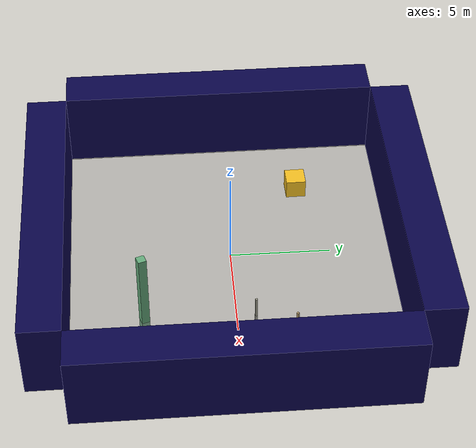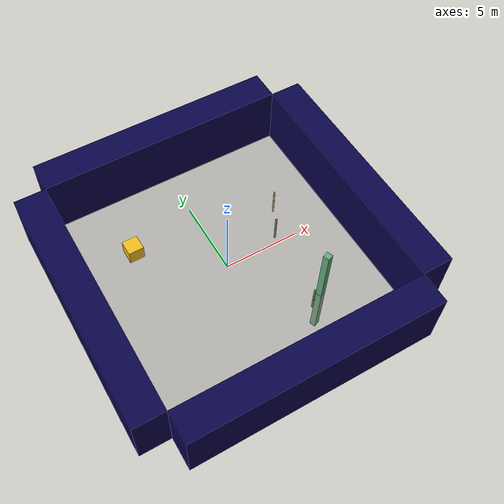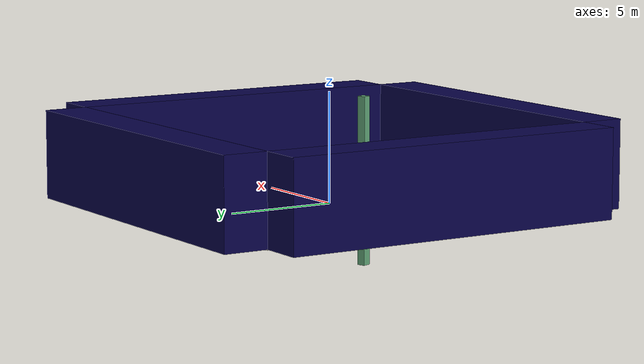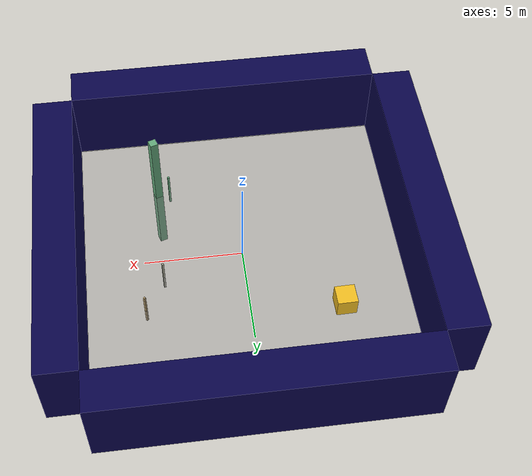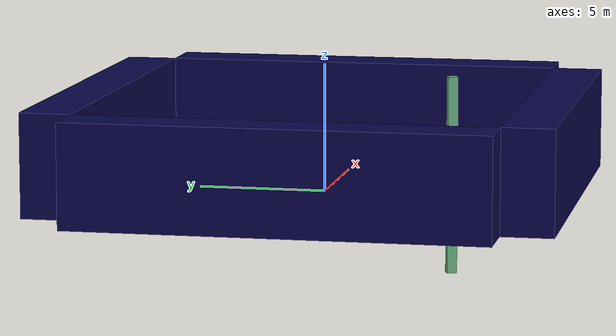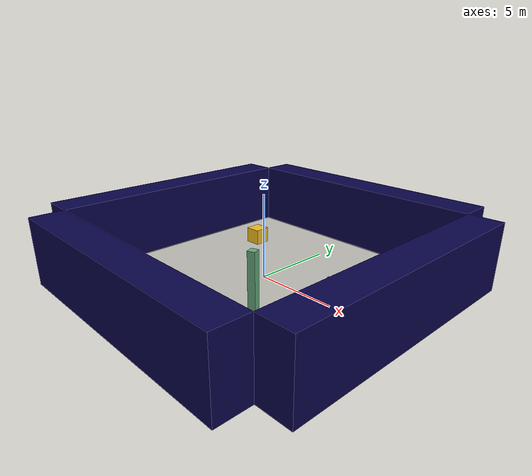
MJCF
<mujoco model="unnamed_model">
  <default>
    <default class="/" />
    <default class="border/" />
    <default class="border_1/" />
    <default class="border_2/" />
    <default class="border_3/" />
    <default class="light/" />
    <default class="agent/" />
    <default class="apple0/" />
    <default class="apple1/" />
    <default class="stone/" />
    <default class="stone_1/" />
  </default>
  <worldbody>
    <body name="border/">
      <body name="border/border" pos="0 9 2">
        <geom name="border/border_geom" class="border/" type="box" size="8.0 1.0 2.0" rgba="0.035 0.016 0.29 1.0" />
      </body>
    </body>
    <body name="border_1/">
      <body name="border_1/border" pos="0 -9 2">
        <geom name="border_1/border_geom" class="border_1/" type="box" size="8.0 1.0 2.0" rgba="0.035 0.016 0.29 1.0" />
      </body>
    </body>
    <body name="border_2/">
      <body name="border_2/border" pos="9 0 2">
        <geom name="border_2/border_geom" class="border_2/" type="box" size="1.0 8.0 2.0" rgba="0.035 0.016 0.29 1.0" />
      </body>
    </body>
    <body name="border_3/">
      <body name="border_3/border" pos="-9 0 2">
        <geom name="border_3/border_geom" class="border_3/" type="box" size="1.0 8.0 2.0" rgba="0.035 0.016 0.29 1.0" />
      </body>
    </body>
    <body name="light/">
      <body name="light/light" pos="0 0 15">
        <geom name="light/light_geom" class="light/" size="0.5" rgba="1.0 1.0 1.0 0.0" />
        <light name="light//unnamed_light_0" class="light/" />
      </body>
    </body>
    <body euler="0 0 270.95887852662383" name="agent/" pos="-4.6091999999999995 3.7324999999999999 0.5">
      <joint name="agent/boxagent_freeJoint/" class="/" type="free" />
      <body name="agent/agent" pos="0 0 0" euler="0 0 0">
        <geom name="agent/boxagent_geom" class="agent/" type="box" size="0.5 0.5 0.5" rgba="0.949 0.7451 0.1333 1.0" euler="0 0 0" />
        <camera name="agent/boxagent_camera" class="agent/" pos="0 -0.90000000000000002 0" euler="90 0 0" />
      </body>
    </body>
    <body name="apple0/">
      <body name="apple0/apple0" pos="3.9937 -4.4203999999999999 0.10000000000000001" euler="0 0 18.721405050352615">
        <geom name="apple0/apple_geom" class="apple0/" type="box" size="0.2 0.2 4.0" rgba="0.396078431372549 0.6705882352941176 0.48627450980392156 1.0" />
      </body>
    </body>
    <body name="apple1/">
      <body name="apple1/apple1" pos="4.0975000000000001 0.93239999999999945 0.10000000000000001" euler="0 0 -74.986673796862107">
        <geom name="apple1/apple_geom" class="apple1/" type="box" size="0.05 0.05 1.0" rgba="0.6470588235294118 0.6392156862745098 0.5686274509803921 1.0" />
      </body>
    </body>
    <body name="stone/">
      <body name="stone/stone" pos="3.3769499999999999 -4.5979999999999999 0.10000000000000001" euler="0 0 11.609030489563139">
        <geom name="stone/stone_geom" class="stone/" type="box" size="0.05 0.05 1.0" rgba="0.396078431372549 0.6705882352941176 0.48627450980392156 1.0" />
      </body>
    </body>
    <body name="stone_1/">
      <body name="stone_1/stone" pos="5.1167999999999996 2.8071999999999999 0.10000000000000001" euler="0 0 -133.25749785459217">
        <geom name="stone_1/stone_geom" class="stone_1/" type="box" size="0.05 0.05 1.0" rgba="0.6980392156862745 0.6 0.43137254901960786 1.0" />
      </body>
    </body>
    <geom name="base_plane" class="/" type="plane" size="8 8 0.10000000000000001" />
  </worldbody>
</mujoco>
